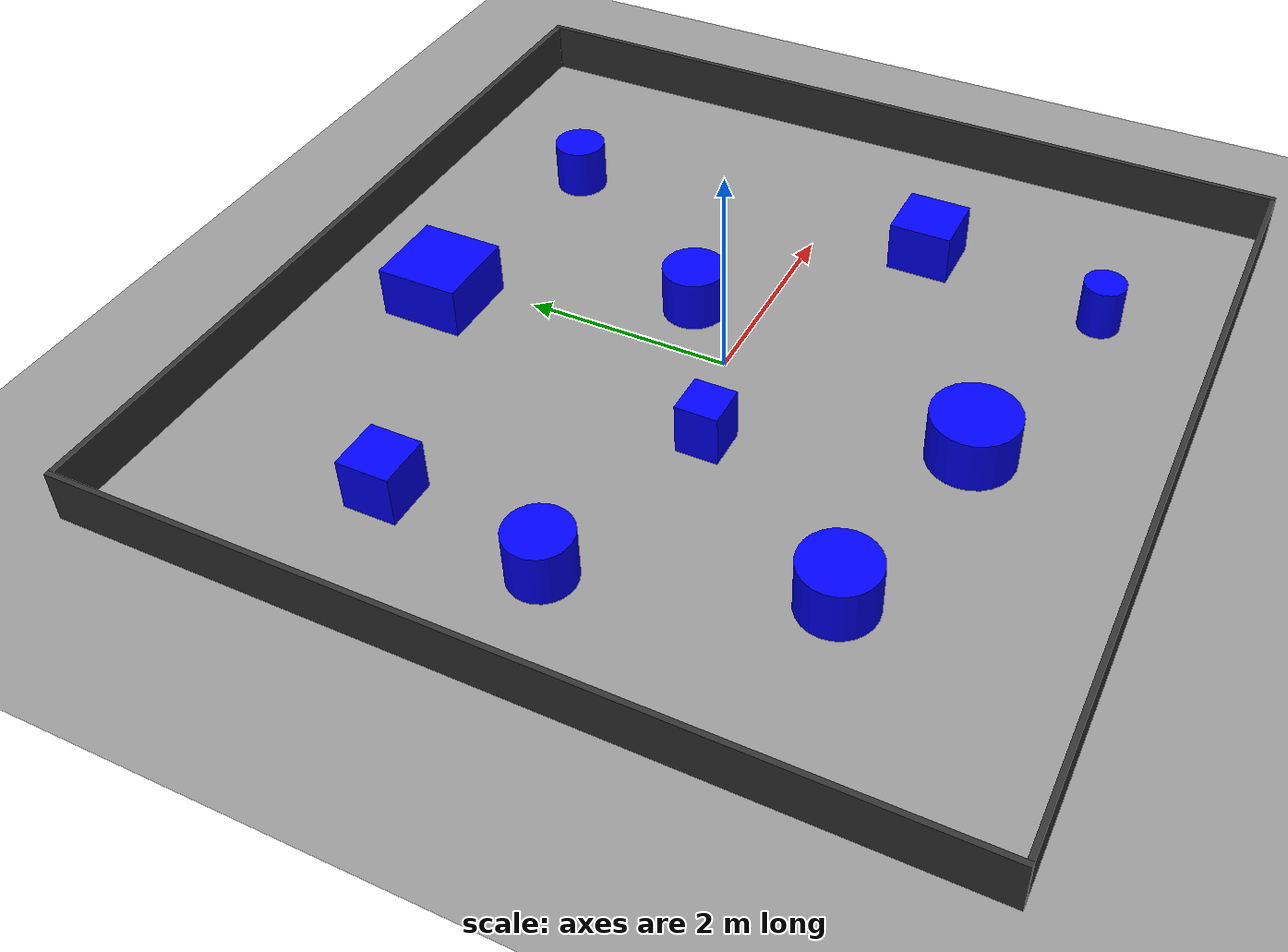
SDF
<sdf version='1.9'>
  <world name='world_1'>
    <physics name='1ms' type='ignored'>
      <max_step_size>0.001</max_step_size>
      <real_time_factor>1</real_time_factor>
      <real_time_update_rate>1000</real_time_update_rate>
    </physics>
    <plugin name='gz::sim::systems::Physics' filename='ignition-gazebo-physics-system'/>
    <plugin name='gz::sim::systems::UserCommands' filename='ignition-gazebo-user-commands-system'/>
    <plugin name='gz::sim::systems::SceneBroadcaster' filename='ignition-gazebo-scene-broadcaster-system'/>
    <plugin name='gz::sim::systems::Contact' filename='ignition-gazebo-contact-system'/>
    <plugin name = "ignition::gazebo::systems::Sensors" filename = "ignition-gazebo-sensors-system"/>
    <gravity>0 0 -9.8</gravity>
    <magnetic_field>6e-06 2.3e-05 -4.2e-05</magnetic_field>
    <atmosphere type='adiabatic'/>
    <scene>
      <ambient>0.4 0.4 0.4 1</ambient>
      <background>0.7 0.7 0.7 1</background>
      <shadows>true</shadows>
    </scene>

    <model name='ground_plane'>
      <static>true</static>
      <link name='link'>
        <collision name='collision'>
          <geometry>
            <plane>
              <normal>0 0 1</normal>
              <size>100 100</size>
            </plane>
          </geometry>
          <surface>
            <friction>
              <ode/>
            </friction>
            <bounce/>
            <contact/>
          </surface>
        </collision>
        <visual name='visual'>
          <geometry>
            <plane>
              <normal>0 0 1</normal>
              <size>8 8</size>
            </plane>
          </geometry>
          <material>
            <ambient>0.6 0.6 0.6 1</ambient>
            <diffuse>0.6 0.6 0.6 1</diffuse>
            <specular>0.8 0.8 0.8 1</specular>
          </material>
        </visual>
        <pose>0 0 0 0 -0 0</pose>
        <inertial>
          <pose>0 0 0 0 -0 0</pose>
          <mass>1</mass>
          <inertia>
            <ixx>1</ixx>
            <ixy>0</ixy>
            <ixz>0</ixz>
            <iyy>1</iyy>
            <iyz>0</iyz>
            <izz>1</izz>
          </inertia>
        </inertial>
        <enable_wind>false</enable_wind>
      </link>
      <pose>0 0 0 0 -0 0</pose>
      <self_collide>false</self_collide>
    </model>

    <model name='wall_north'>
      <pose>4.025 0 0.25 -0 0 -0</pose>
      <link name='wall_north_link'>
        <inertial>
          <inertia>
            <ixx>0.16666</ixx>
            <ixy>0</ixy>
            <ixz>0</ixz>
            <iyy>0.16666</iyy>
            <iyz>0</iyz>
            <izz>0.16666</izz>
          </inertia>
          <mass>1</mass>
          <pose>0 0 0 0 -0 0</pose>
        </inertial>
        <collision name='wall_north_collision'>
          <geometry>
            <box>
              <size>0.05 8.1 0.5</size>
            </box>
          </geometry>
          <surface>
            <friction>
              <ode/>
            </friction>
            <bounce/>
            <contact/>
          </surface>
        </collision>
        <visual name='wall_north_visual'>
          <geometry>
            <box>
              <size>0.05 8.1 0.5</size>
            </box>
          </geometry>
          <material>
            <ambient>0.2 0.2 0.2 1</ambient>
            <diffuse>0.2 0.2 0.2 1</diffuse>
            <specular>1 1 1 1</specular>
          </material>
        </visual>
        <pose>0 0 0 0 -0 0</pose>
        <enable_wind>false</enable_wind>
      </link>
      <static>true</static>
      <self_collide>false</self_collide>
    </model>

    <model name='wall_south'>
      <pose>-4.025 0 0.25 -0 0 -0</pose>
      <link name='wall_south_link'>
        <inertial>
          <inertia>
            <ixx>0.16666</ixx>
            <ixy>0</ixy>
            <ixz>0</ixz>
            <iyy>0.16666</iyy>
            <iyz>0</iyz>
            <izz>0.16666</izz>
          </inertia>
          <mass>1</mass>
          <pose>0 0 0 0 -0 0</pose>
        </inertial>
        <collision name='wall_south_collision'>
          <geometry>
            <box>
              <size>0.05 8.1 0.5</size>
            </box>
          </geometry>
          <surface>
            <friction>
              <ode/>
            </friction>
            <bounce/>
            <contact/>
          </surface>
        </collision>
        <visual name='wall_south_visual'>
          <geometry>
            <box>
              <size>0.05 8.1 0.5</size>
            </box>
          </geometry>
          <material>
            <ambient>0.2 0.2 0.2 1</ambient>
            <diffuse>0.2 0.2 0.2 1</diffuse>
            <specular>1 1 1 1</specular>
          </material>
        </visual>
        <pose>0 0 0 0 -0 0</pose>
        <enable_wind>false</enable_wind>
      </link>
      <static>true</static>
      <self_collide>false</self_collide>
    </model>

    <model name='wall_east'>
      <pose>-0 -4.025 0.25 -0 0 -0</pose>
      <link name='wall_east_link'>
        <inertial>
          <inertia>
            <ixx>0.16666</ixx>
            <ixy>0</ixy>
            <ixz>0</ixz>
            <iyy>0.16666</iyy>
            <iyz>0</iyz>
            <izz>0.16666</izz>
          </inertia>
          <mass>1</mass>
          <pose>0 0 0 0 -0 0</pose>
        </inertial>
        <collision name='wall_east_collision'>
          <geometry>
            <box>
              <size>8 0.05 0.5</size>
            </box>
          </geometry>
          <surface>
            <friction>
              <ode/>
            </friction>
            <bounce/>
            <contact/>
          </surface>
        </collision>
        <visual name='wall_east_visual'>
          <geometry>
            <box>
              <size>8 0.05 0.5</size>
            </box>
          </geometry>
          <material>
            <ambient>0.2 0.2 0.2 1</ambient>
            <diffuse>0.2 0.2 0.2 1</diffuse>
            <specular>1 1 1 1</specular>
          </material>
        </visual>
        <pose>0 0 0 0 -0 0</pose>
        <enable_wind>false</enable_wind>
      </link>
      <static>true</static>
      <self_collide>false</self_collide>
    </model>

    <model name='wall_west'>
      <pose>-0 4.025 0.25 -0 0 -0</pose>
      <link name='wall_west_link'>
        <inertial>
          <inertia>
            <ixx>0.16666</ixx>
            <ixy>0</ixy>
            <ixz>0</ixz>
            <iyy>0.16666</iyy>
            <iyz>0</iyz>
            <izz>0.16666</izz>
          </inertia>
          <mass>1</mass>
          <pose>0 0 0 0 -0 0</pose>
        </inertial>
        <collision name='wall_west_collision'>
          <geometry>
            <box>
              <size>8 0.05 0.5</size>
            </box>
          </geometry>
          <surface>
            <friction>
              <ode/>
            </friction>
            <bounce/>
            <contact/>
          </surface>
        </collision>
        <visual name='wall_west_visual'>
          <geometry>
            <box>
              <size>8 0.05 0.5</size>
            </box>
          </geometry>
          <material>
            <ambient>0.2 0.2 0.2 1</ambient>
            <diffuse>0.2 0.2 0.2 1</diffuse>
            <specular>1 1 1 1</specular>
          </material>
        </visual>
        <pose>0 0 0 0 -0 0</pose>
        <enable_wind>false</enable_wind>
      </link>
      <static>true</static>
      <self_collide>false</self_collide>
    </model>

    <model name='box'>
      <pose>-2.7 1.8 0.25 0 0 -0</pose>
      <link name='box_link'>
        <inertial>
          <inertia>
            <ixx>0.16666</ixx>
            <ixy>0</ixy>
            <ixz>0</ixz>
            <iyy>0.16666</iyy>
            <iyz>0</iyz>
            <izz>0.16666</izz>
          </inertia>
          <mass>1</mass>
          <pose>0 0 0 0 -0 0</pose>
        </inertial>
        <collision name='box_collision'>
          <geometry>
            <box>
              <size>0.5 0.5 0.5</size>
            </box>
          </geometry>
          <surface>
            <friction>
              <ode/>
            </friction>
            <bounce/>
            <contact/>
          </surface>
        </collision>
        <visual name='box_visual'>
          <geometry>
            <box>
              <size>0.5 0.5 0.5</size>
            </box>
          </geometry>
          <material>
            <ambient>0 0 1 1</ambient>
            <diffuse>0 0 1 1</diffuse>
            <specular>1 1 1 1</specular>
          </material>
        </visual>
        <pose>0 0 0 0 -0 0</pose>
        <enable_wind>false</enable_wind>
      </link>
      <static>true</static>
      <self_collide>false</self_collide>
    </model>

    <model name='box_0'>
      <pose>-0.3 2.8 0.25 0 0 -0</pose>
      <link name='box_link'>
        <inertial>
          <inertia>
            <ixx>0.16666</ixx>
            <ixy>0</ixy>
            <ixz>0</ixz>
            <iyy>0.16666</iyy>
            <iyz>0</iyz>
            <izz>0.16666</izz>
          </inertia>
          <mass>1</mass>
          <pose>0 0 0 0 -0 0</pose>
        </inertial>
        <collision name='box_collision'>
          <geometry>
            <box>
              <size>0.8 0.8 0.5</size>
            </box>
          </geometry>
          <surface>
            <friction>
              <ode/>
            </friction>
            <bounce/>
            <contact/>
          </surface>
        </collision>
        <visual name='box_visual'>
          <geometry>
            <box>
              <size>0.8 0.8 0.5</size>
            </box>
          </geometry>
          <material>
            <ambient>0 0 1 1</ambient>
            <diffuse>0 0 1 1</diffuse>
            <specular>1 1 1 1</specular>
          </material>
        </visual>
        <pose>0 0 0 0 -0 0</pose>
        <enable_wind>false</enable_wind>
      </link>
      <static>true</static>
      <self_collide>false</self_collide>
    </model>

    <model name='box_1'>
      <pose>-1.0 -0.3 0.25 0 0 -0</pose>
      <link name='box_link'>
        <inertial>
          <inertia>
            <ixx>0.16666</ixx>
            <ixy>0</ixy>
            <ixz>0</ixz>
            <iyy>0.16666</iyy>
            <iyz>0</iyz>
            <izz>0.16666</izz>
          </inertia>
          <mass>1</mass>
          <pose>0 0 0 0 -0 0</pose>
        </inertial>
        <collision name='box_collision'>
          <geometry>
            <box>
              <size>0.4 0.4 0.5</size>
            </box>
          </geometry>
          <surface>
            <friction>
              <ode/>
            </friction>
            <bounce/>
            <contact/>
          </surface>
        </collision>
        <visual name='box_visual'>
          <geometry>
            <box>
              <size>0.4 0.4 0.5</size>
            </box>
          </geometry>
          <material>
            <ambient>0 0 1 1</ambient>
            <diffuse>0 0 1 1</diffuse>
            <specular>1 1 1 1</specular>
          </material>
        </visual>
        <pose>0 0 0 0 -0 0</pose>
        <enable_wind>false</enable_wind>
      </link>
      <static>true</static>
      <self_collide>false</self_collide>
    </model>

    <model name='box_2'>
      <pose>2.3 -1.1 0.25 0 0 -0</pose>
      <link name='box_link'>
        <inertial>
          <inertia>
            <ixx>0.16666</ixx>
            <ixy>0</ixy>
            <ixz>0</ixz>
            <iyy>0.16666</iyy>
            <iyz>0</iyz>
            <izz>0.16666</izz>
          </inertia>
          <mass>1</mass>
          <pose>0 0 0 0 -0 0</pose>
        </inertial>
        <collision name='box_collision'>
          <geometry>
            <box>
              <size>0.6 0.6 0.5</size>
            </box>
          </geometry>
          <surface>
            <friction>
              <ode/>
            </friction>
            <bounce/>
            <contact/>
          </surface>
        </collision>
        <visual name='box_visual'>
          <geometry>
            <box>
              <size>0.6 0.6 0.5</size>
            </box>
          </geometry>
          <material>
            <ambient>0 0 1 1</ambient>
            <diffuse>0 0 1 1</diffuse>
            <specular>1 1 1 1</specular>
          </material>
        </visual>
        <pose>0 0 0 0 -0 0</pose>
        <enable_wind>false</enable_wind>
      </link>
      <static>true</static>
      <self_collide>false</self_collide>
    </model>

    <model name='cylinder'>
      <pose>2.0 2.6 0.25 -0 -0 0</pose>
      <link name='cylinder_link'>
        <inertial>
          <inertia>
            <ixx>0.14580000000000001</ixx>
            <ixy>0</ixy>
            <ixz>0</ixz>
            <iyy>0.14580000000000001</iyy>
            <iyz>0</iyz>
            <izz>0.125</izz>
          </inertia>
          <mass>1</mass>
          <pose>0 0 0 0 -0 0</pose>
        </inertial>
        <collision name='cylinder_collision'>
          <geometry>
            <cylinder>
              <radius>0.25</radius>
              <length>0.5</length>
            </cylinder>
          </geometry>
          <surface>
            <friction>
              <ode/>
            </friction>
            <bounce/>
            <contact/>
          </surface>
        </collision>
        <visual name='cylinder_visual'>
          <geometry>
            <cylinder>
              <radius>0.25</radius>
              <length>0.5</length>
            </cylinder>
          </geometry>
          <material>
            <ambient>0 0 1  1</ambient>
            <diffuse>0 0 1  1</diffuse>
            <specular>1 1 1 1</specular>
          </material>
        </visual>
        <pose>0 0 0 0 -0 0</pose>
        <enable_wind>false</enable_wind>
      </link>
      <static>true</static>
      <self_collide>false</self_collide>
    </model>

    <model name='cylinder_0'>
      <pose>-0.2 -2.4 0.25 0 0 0</pose>
      <link name='cylinder_link'>
        <inertial>
          <inertia>
            <ixx>0.14580000000000001</ixx>
            <ixy>0</ixy>
            <ixz>0</ixz>
            <iyy>0.14580000000000001</iyy>
            <iyz>0</iyz>
            <izz>0.125</izz>
          </inertia>
          <mass>1</mass>
          <pose>0 0 0 0 -0 0</pose>
        </inertial>
        <collision name='cylinder_collision'>
          <geometry>
            <cylinder>
              <radius>0.4</radius>
              <length>0.5</length>
            </cylinder>
          </geometry>
          <surface>
            <friction>
              <ode/>
            </friction>
            <bounce/>
            <contact/>
          </surface>
        </collision>
        <visual name='cylinder_visual'>
          <geometry>
            <cylinder>
              <radius>0.4</radius>
              <length>0.5</length>
            </cylinder>
          </geometry>
          <material>
            <ambient>0 0 1 1</ambient>
            <diffuse>0 0 1 1</diffuse>
            <specular>1 1 1 1</specular>
          </material>
        </visual>
        <pose>0 0 0 0 -0 0</pose>
        <enable_wind>false</enable_wind>
      </link>
      <static>true</static>
      <self_collide>false</self_collide>
    </model>

    <model name='cylinder_1'>
      <pose>-2.2 -2.0 0.25 0 0 0</pose>
      <link name='cylinder_link'>
        <inertial>
          <inertia>
            <ixx>0.14580000000000001</ixx>
            <ixy>0</ixy>
            <ixz>0</ixz>
            <iyy>0.14580000000000001</iyy>
            <iyz>0</iyz>
            <izz>0.125</izz>
          </inertia>
          <mass>1</mass>
          <pose>0 0 0 0 -0 0</pose>
        </inertial>
        <collision name='cylinder_collision'>
          <geometry>
            <cylinder>
              <radius>0.35</radius>
              <length>0.5</length>
            </cylinder>
          </geometry>
          <surface>
            <friction>
              <ode/>
            </friction>
            <bounce/>
            <contact/>
          </surface>
        </collision>
        <visual name='cylinder_visual'>
          <geometry>
            <cylinder>
              <radius>0.35</radius>
              <length>0.5</length>
            </cylinder>
          </geometry>
          <material>
            <ambient>0 0 1 1</ambient>
            <diffuse>0 0 1 1</diffuse>
            <specular>1 1 1 1</specular>
          </material>
        </visual>
        <pose>0 0 0 0 -0 0</pose>
        <enable_wind>false</enable_wind>
      </link>
      <static>true</static>
      <self_collide>false</self_collide>
    </model>

    <model name='cylinder_2'>
      <pose>0.6 0.6 0.25 0 0 0</pose>
      <link name='cylinder_link'>
        <inertial>
          <inertia>
            <ixx>0.14580000000000001</ixx>
            <ixy>0</ixy>
            <ixz>0</ixz>
            <iyy>0.14580000000000001</iyy>
            <iyz>0</iyz>
            <izz>0.125</izz>
          </inertia>
          <mass>1</mass>
          <pose>0 0 0 0 -0 0</pose>
        </inertial>
        <collision name='cylinder_collision'>
          <geometry>
            <cylinder>
              <radius>0.3</radius>
              <length>0.5</length>
            </cylinder>
          </geometry>
          <surface>
            <friction>
              <ode/>
            </friction>
            <bounce/>
            <contact/>
          </surface>
        </collision>
        <visual name='cylinder_visual'>
          <geometry>
            <cylinder>
              <radius>0.3</radius>
              <length>0.5</length>
            </cylinder>
          </geometry>
          <material>
            <ambient>0 0 1 1</ambient>
            <diffuse>0 0 1 1</diffuse>
            <specular>1 1 1 1</specular>
          </material>
        </visual>
        <pose>0 0 0 0 -0 0</pose>
        <enable_wind>false</enable_wind>
      </link>
      <static>true</static>
      <self_collide>false</self_collide>
    </model>

    <model name='cylinder_3'>
      <pose>2.0 -2.9 0.25 -0 0 -0</pose>
      <link name='cylinder_link'>
        <inertial>
          <inertia>
            <ixx>0.14580000000000001</ixx>
            <ixy>0</ixy>
            <ixz>0</ixz>
            <iyy>0.14580000000000001</iyy>
            <iyz>0</iyz>
            <izz>0.125</izz>
          </inertia>
          <mass>1</mass>
          <pose>0 0 0 0 -0 0</pose>
        </inertial>
        <collision name='cylinder_collision'>
          <geometry>
            <cylinder>
              <radius>0.2</radius>
              <length>0.5</length>
            </cylinder>
          </geometry>
          <surface>
            <friction>
              <ode/>
            </friction>
            <bounce/>
            <contact/>
          </surface>
        </collision>
        <visual name='cylinder_visual'>
          <geometry>
            <cylinder>
              <radius>0.2</radius>
              <length>0.5</length>
            </cylinder>
          </geometry>
          <material>
            <ambient>0 0 1 1</ambient>
            <diffuse>0 0 1 1</diffuse>
            <specular>1 1 1 1</specular>
          </material>
        </visual>
        <pose>0 0 0 0 -0 0</pose>
        <enable_wind>false</enable_wind>
      </link>
      <static>true</static>
      <self_collide>false</self_collide>
    </model>

    <model name='cylinder_4'>
      <pose>-2.9 0.2 0.25 0 0 0</pose>
      <link name='cylinder_link'>
        <inertial>
          <inertia>
            <ixx>0.14580000000000001</ixx>
            <ixy>0</ixy>
            <ixz>0</ixz>
            <iyy>0.14580000000000001</iyy>
            <iyz>0</iyz>
            <izz>0.125</izz>
          </inertia>
          <mass>1</mass>
          <pose>0 0 0 0 -0 0</pose>
        </inertial>
        <collision name='cylinder_collision'>
          <geometry>
            <cylinder>
              <radius>0.3</radius>
              <length>0.5</length>
            </cylinder>
          </geometry>
          <surface>
            <friction>
              <ode/>
            </friction>
            <bounce/>
            <contact/>
          </surface>
        </collision>
        <visual name='cylinder_visual'>
          <geometry>
            <cylinder>
              <radius>0.3</radius>
              <length>0.5</length>
            </cylinder>
          </geometry>
          <material>
            <ambient>0 0 1 1</ambient>
            <diffuse>0 0 1 1</diffuse>
            <specular>1 1 1 1</specular>
          </material>
        </visual>
        <pose>0 0 0 0 -0 0</pose>
        <enable_wind>false</enable_wind>
      </link>
      <static>true</static>
      <self_collide>false</self_collide>
    </model>

    <light name='sun' type='directional'>
      <pose>0 0 10 0 -0 0</pose>
      <cast_shadows>true</cast_shadows>
      <intensity>1</intensity>
      <direction>-0.5 0.1 -0.9</direction>
      <diffuse>0.8 0.8 0.8 1</diffuse>
      <specular>0.2 0.2 0.2 1</specular>
      <attenuation>
        <range>1000</range>
        <linear>0.01</linear>
        <constant>0.90000000000000002</constant>
        <quadratic>0.001</quadratic>
      </attenuation>
      <spot>
        <inner_angle>0</inner_angle>
        <outer_angle>0</outer_angle>
        <falloff>0</falloff>
      </spot>
    </light>
  </world>
</sdf>
